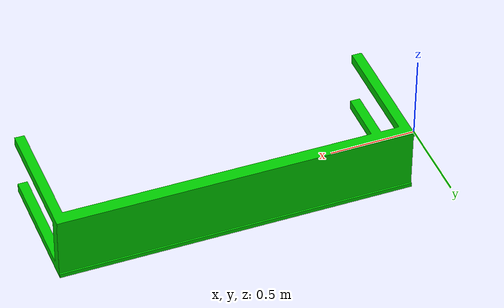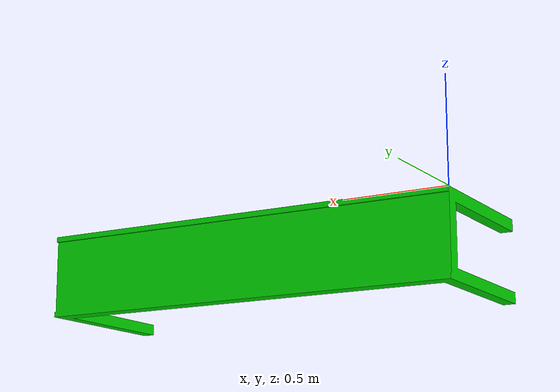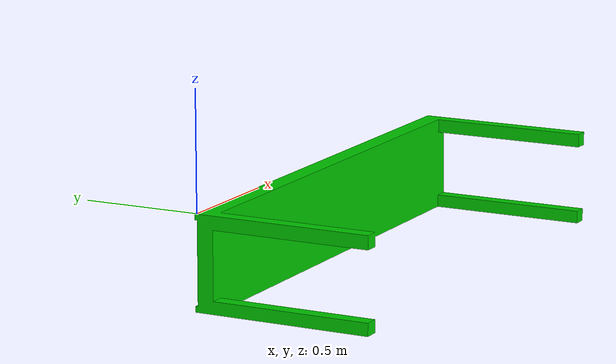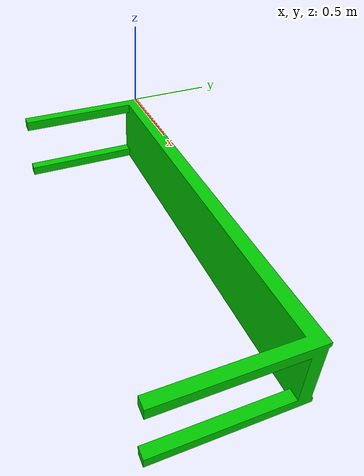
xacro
<?xml version="1.0" encoding="utf-8"?>
<robot xmlns:xacro="http://wiki.ros.org/xacro"
       name="conveyor_belt">
  <link
    name="conveyor_belt">
    <inertial>
      <origin
        xyz="1.0468 -0.083279 -0.1994"
        rpy="0 0 0" />
      <mass
        value="68.822" />
      <inertia
        ixx="2.5615"
        ixy="-0.071915"
        ixz="0.000879579999999996"
        iyy="32.429"
        iyz="-0.013471"
        izz="32.813" />
    </inertial>
    <visual>
      <origin
        xyz="0 0 0"
        rpy="1.5707963267949 0 0" />
      <geometry>
        <mesh
          filename="package://ur3ur10car/conveyor_belt/meshes/conveyor_belt.STL" />
      </geometry>
      <material
        name="green">
        <color
          rgba="0 0.8 0 1" />
      </material>
    </visual>
    <collision>
      <origin
        xyz="0 0 0"
        rpy="1.5707963267949 0 0" />
      <geometry>
        <mesh
          filename="package://ur3ur10car/conveyor_belt/meshes/conveyor_belt.STL" />
      </geometry>
    </collision>
  </link>
</robot>
